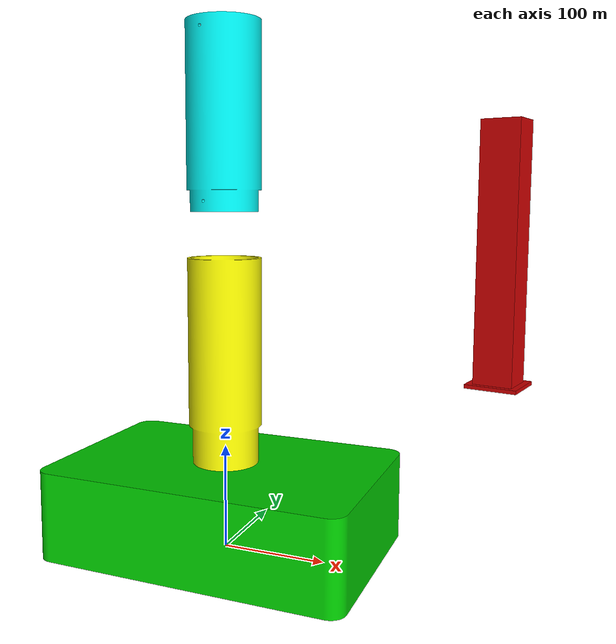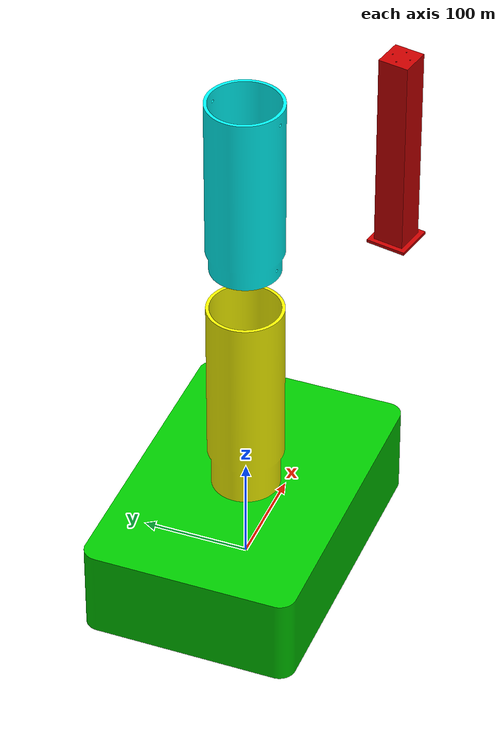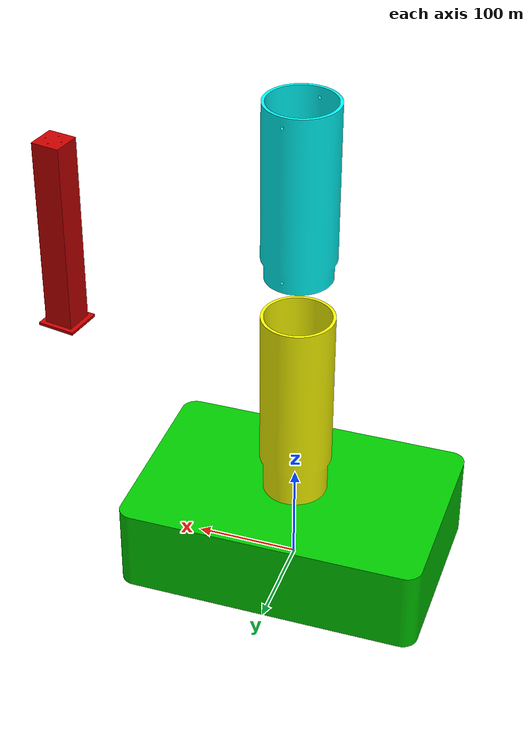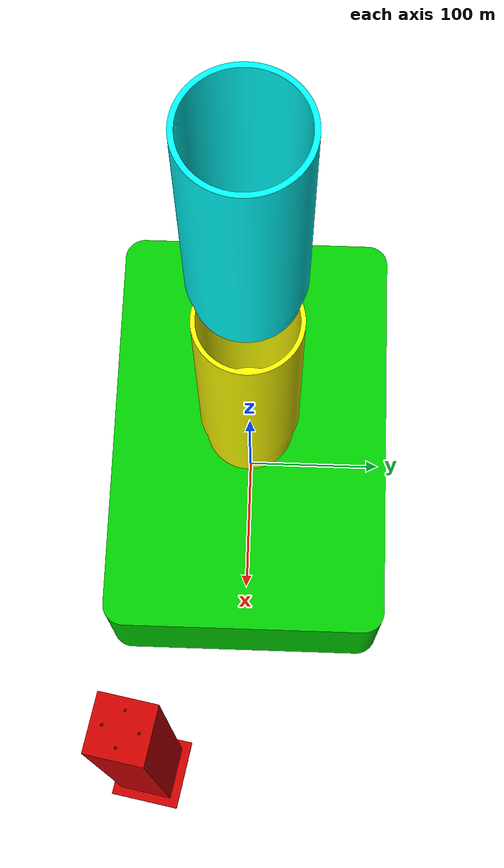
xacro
<?xml version="1.0"?>
<!-- https://wiki.ros.org/urdf/XML/link -->

<robot name="rrp">
    <!-- Definições de materiais usados nas geometrias do robô -->

    <!-- Material para cor vermelha -->
    <material name="red">
    <color rgba="0.8 0 0 1"/>
    </material>

    <!-- Material para cor verde -->
    <material name="green">
    <color rgba="0 0.8 0 1"/>
    </material>

    <!-- Material para cor azul -->
    <material name="blue">
    <color rgba="0 0 0.8 1"/>
    </material>

    <!-- Material para cor amarela -->
    <material name="yellow">
    <color rgba="1 1 0 1"/>
    </material>

    <!-- Material para cor cyan -->
    <material name="cyan">
    <color rgba="0 1 1 1"/>
    </material>

    <material name="white">
    <color rgba="0.1 0.1 0.1 1"/>
    </material>

<!-- Definicao dos LINKS e JUNTAS
-->
    <!-- Definição do link 'world', que é o ponto de origem do sistema -->
    <link name="world">
    <visual>
        <geometry>
            <box size="0.0 0.0 0.0"/>
        </geometry>
        <origin rpy="0 0 0" xyz="0 0 0"/>
        <material name="green"/>
    </visual>
</link>

    <!-- Junta fixa que conecta o 'world' ao 'base_link' -->
    <joint name="joint_0" type="fixed">
        <parent link="world"/>
        <child link="base_link"/>
        <origin xyz="0 0 0.23" rpy="0 0 0"/>
    </joint>

    <!-- Link 'base_link' que representa a base do manipulador -->
    <link name="base_link">
        <visual>
            <geometry>
                <mesh filename="package://robot_description/meshes/base_link.STL"/>
            </geometry>
            <origin xyz="0 0 0" rpy="0 0 0"/>
            <material name="green"/>
        </visual>
    </link>

    <!-- Junta rotacional (R) entre 'base_link' e 'link_1' -->
    <joint name="joint_1" type="revolute">
        <visual>
            <origin xyz="0 0 0" rpy="0 0 0"/>
            <material name="green"/>
        </visual>

        <parent link="base_link"/>
        <child link="link_1"/>
        <origin xyz="0 0 85" rpy="-1.5708 0 1.3815"/>
        <axis xyz="0 1 0"/>
        <limit effort="1000" velocity="5" lower="-3.141593" upper="3.141593"/>
    </joint>

    <!-- Link 'link_1', que é o primeiro braço do manipulador -->
    <link name="link_1">
        <visual>
            <geometry>
                <mesh filename="package://robot_description/meshes/link_1.STL"/>
            </geometry>
            <origin xyz="0 0 0" rpy="1.57 0 0"/>
            <material name="yellow"/>
        </visual>

        <!-- Configuracoes de colisao usando a mesma mesh do link equivalente -->
        <collision>
            <origin
                xyz="0 0 0"
                rpy="0 0 0" />
            <geometry>
                <mesh
                filename="package://robot_description/meshes/link_1.STL" />
            </geometry>
        </collision>
    </link>

    <!-- Junta rotacional (R) entre 'link_1' e 'link_2' -->
    <joint name="joint_2" type="revolute">
        <parent link="link_1"/>
        <child link="link_2"/>
        <origin xyz="0 -260 0" rpy="0 0 0"/>
        <axis xyz="0 1 0"/>
        <limit effort="1000" velocity="5" lower="-1.5707" upper="1.5707"/>
    </joint>

    <!-- Link 'link_2', que é o segundo braço do manipulador -->
    <link name="link_2">
        <visual>
            <geometry>
                <mesh filename="package://robot_description/meshes/link_2.STL"/>
            </geometry>
            <origin xyz="0 0 0" rpy="1.57 0 0"/>
            <material name="cyan"/>
        </visual>

        <!-- Configuracoes de colisao usando a mesma mesh do link equivalente -->
        <collision>
            <origin
                xyz="0 0 0"
                rpy="0 0 0" />
            <geometry>
                <mesh
                filename="package://robot_description/meshes/link_2.STL" />
            </geometry>
        </collision>
    </link>

    <!-- Junta prismática (P) entre 'link_2' e 'link_3' -->
    <joint name="joint_3" type="prismatic">
        <parent link="link_2"/>
        <child link="link_3"/>
        <origin xyz="0 0 -262.98" rpy="0 0 0"/>
        <axis xyz="0 1 0"/>
        <limit effort="1000" velocity="5" lower="-40" upper="30"/>
    </joint>

    <!-- Link 'link_3', que é o último braço do manipulador -->
    <link name="link_3">
        <visual>
            <geometry>
                <mesh filename="package://robot_description/meshes/link_3.STL"/>
            </geometry>
            <origin xyz="0 -50 0" rpy="-1.57 0 0"/>
            <material name="red"/>
        </visual>
        <!-- Configuracoes de colisao usando a mesma mesh do link equivalente -->
        <collision>
            <origin
                xyz="0 0 0"
                rpy="0 0 0" />
            <geometry>
                <mesh
                filename="package://robot_description/meshes/link_3.STL" />
            </geometry>
        </collision>
    </link>

    <!-- Sensor de força e torque no final -->
    <sensor name="force_torque_sensor" type="force_torque">
        <origin rpy="0 0 0" xyz="0 0 0"/>
        <parent link="link_3"/>
    </sensor>

</robot>
